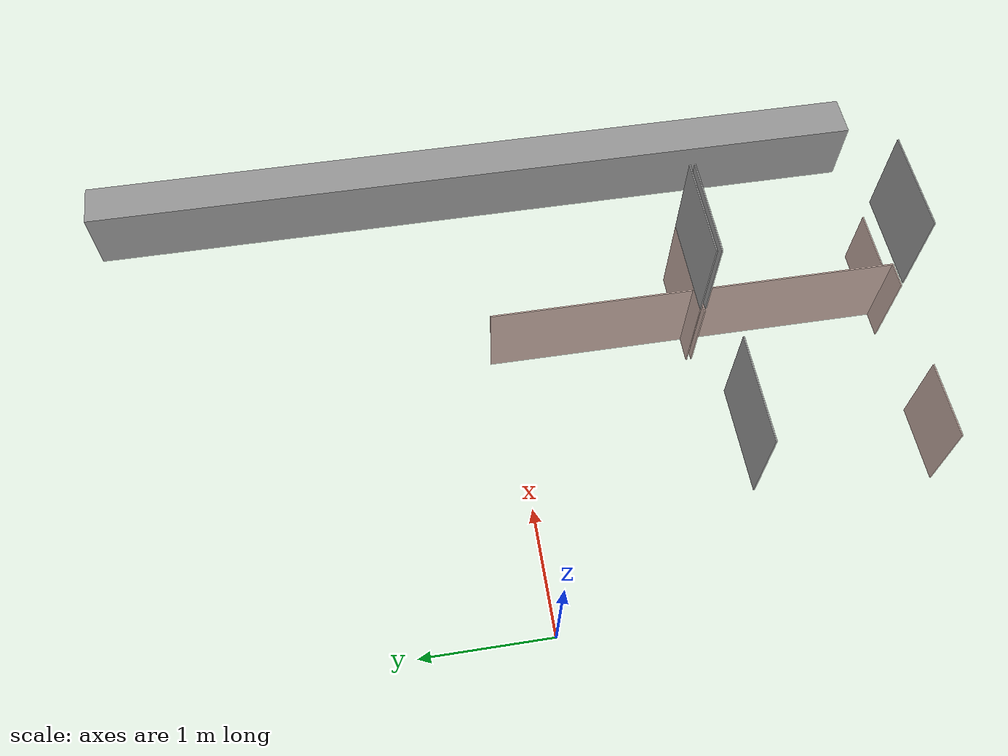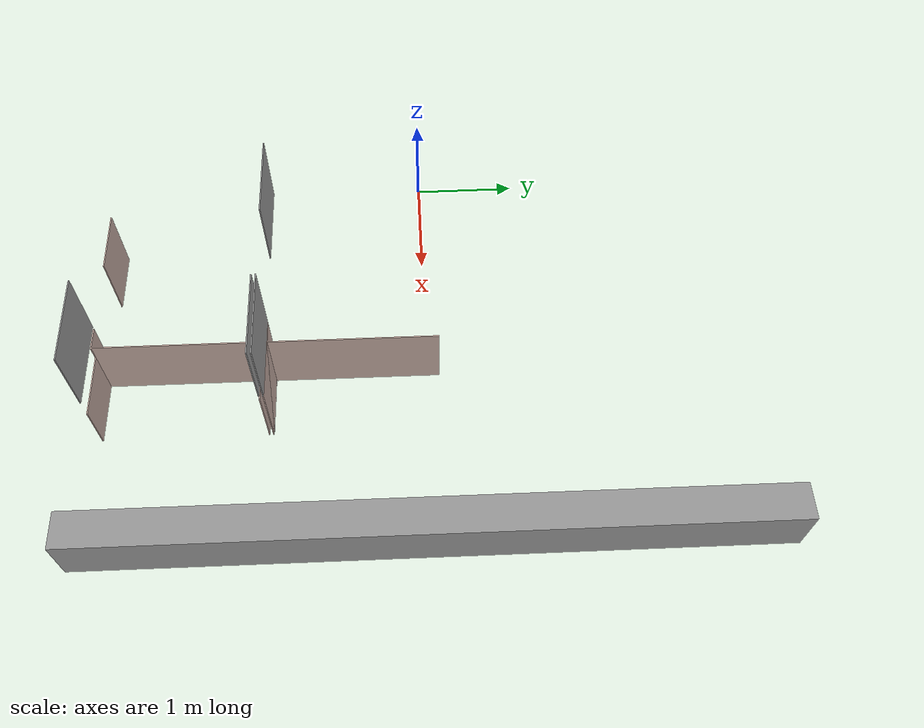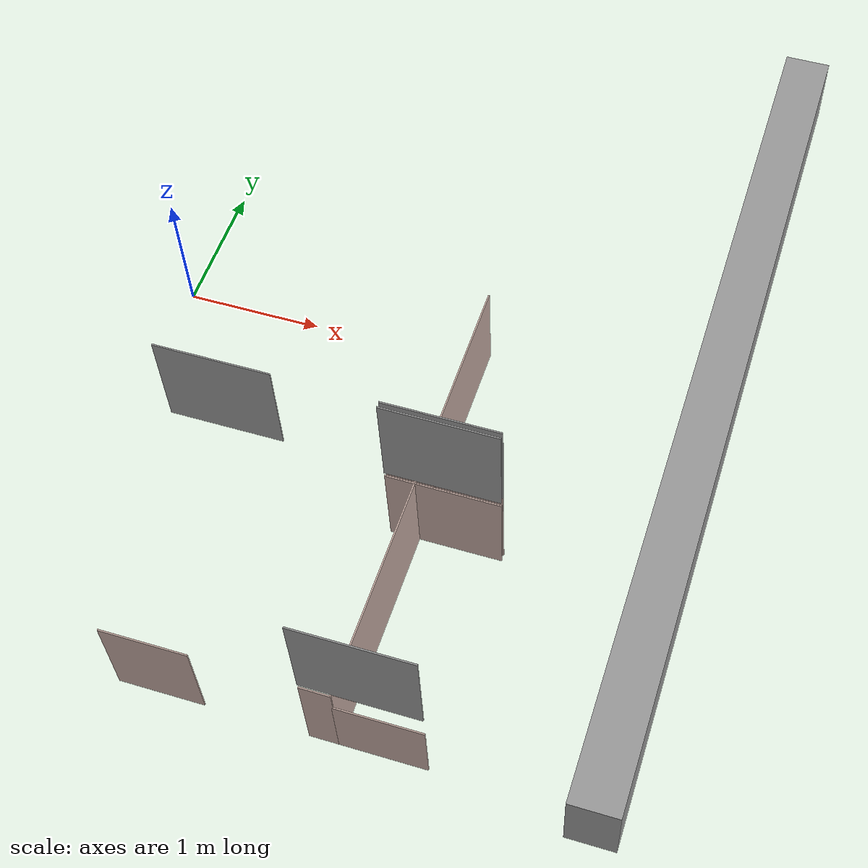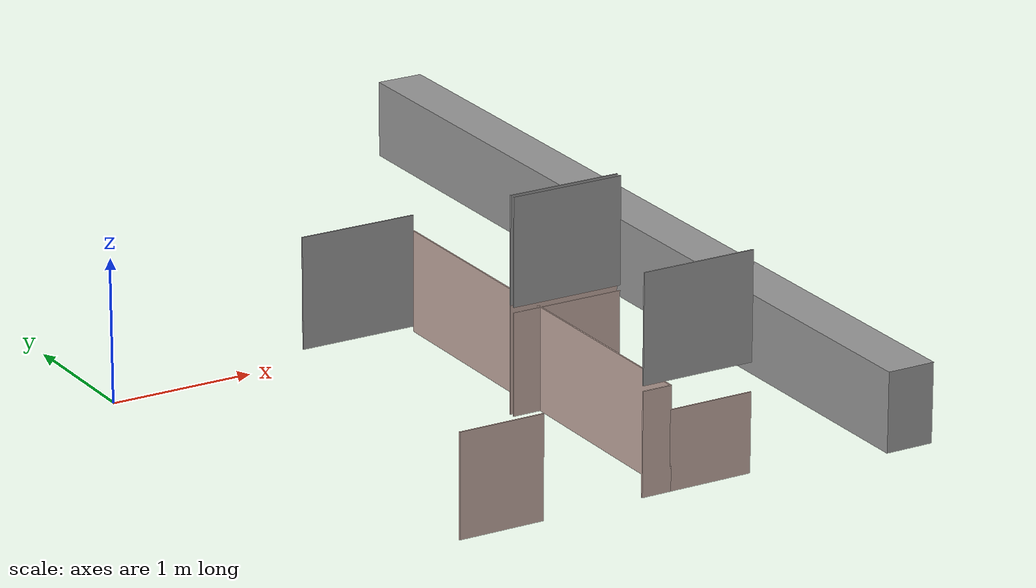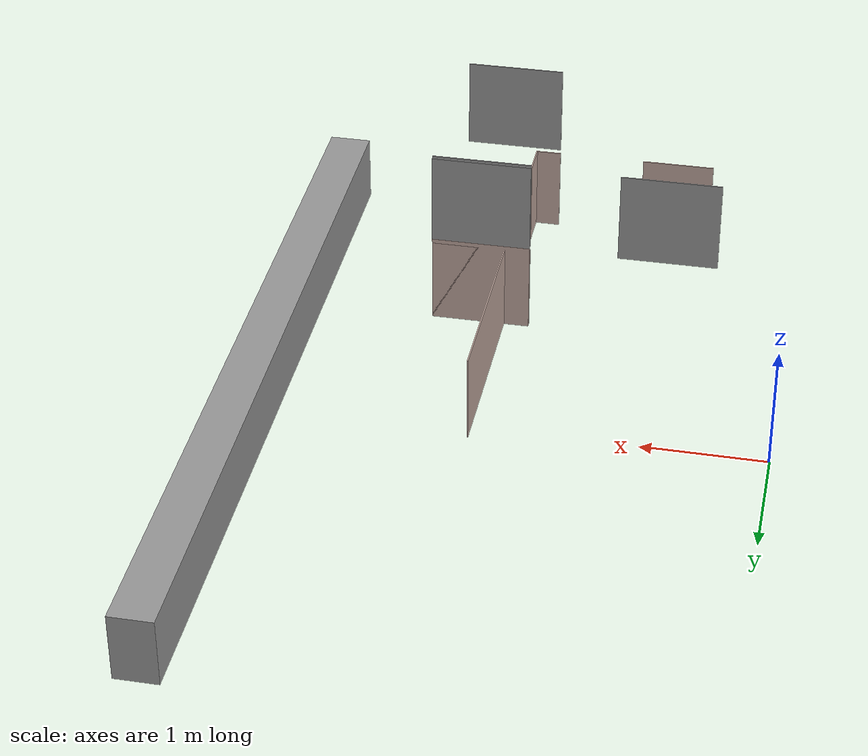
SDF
<sdf version="1.6">
 <model name="change_class3">
  <pose>-0.18406 0.008075 0 0 -0 0</pose>
  <link name="Wall_169">
   <collision name="Wall_169_Collision">
    <geometry><box><size>0.798 0.01 0.751</size></box></geometry>
    <pose>0 0 0.3755 0 -0 0</pose>
   </collision>
   <visual name="Wall_169_Visual">
    <pose>0 0 0.3755 0 -0 0</pose>
    <geometry><box><size>0.798 0.01 0.751</size></box></geometry>
    <material>
     <script><uri>file://media/materials/scripts/gazebo.material</uri><name>Gazebo/Grey</name></script>
     <ambient>1 1 1 1</ambient>
    </material>
   </visual>
   <pose>2.69206 -1.47107 0.751 0 -0 0</pose>
  </link>
  <link name="Wall_170">
   <collision name="Wall_170_Collision">
    <geometry><box><size>0.798 0.01 0.751</size></box></geometry>
    <pose>0 0 0.3755 0 -0 0</pose>
   </collision>
   <visual name="Wall_170_Visual">
    <pose>0 0 0.3755 0 -0 0</pose>
    <geometry><box><size>0.798 0.01 0.751</size></box></geometry>
    <material>
     <script><uri>file://media/materials/scripts/gazebo.material</uri><name>Gazebo/Grey</name></script>
     <ambient>1 1 1 1</ambient>
    </material>
   </visual>
   <pose>2.69206 -1.47107 0.751 0 -0 0</pose>
  </link>
  <link name="Wall_171">
   <collision name="Wall_171_Collision">
    <geometry><box><size>0.798 0.01 0.751</size></box></geometry>
    <pose>0 0 0.3755 0 -0 0</pose>
   </collision>
   <visual name="Wall_171_Visual">
    <pose>0 0 0.3755 0 -0 0</pose>
    <geometry><box><size>0.798 0.01 0.751</size></box></geometry>
    <material>
     <script><uri>file://media/materials/scripts/gazebo.material</uri><name>Gazebo/Grey</name></script>
     <ambient>1 1 1 1</ambient>
    </material>
   </visual>
   <pose>2.69206 -1.51107 0.751 0 -0 0</pose>
  </link>
  <link name="Wall_174">
   <collision name="Wall_174_Collision">
    <geometry><box><size>0.798 0.01 0.751</size></box></geometry>
    <pose>0 0 0.3755 0 -0 0</pose>
   </collision>
   <visual name="Wall_174_Visual">
    <pose>0 0 0.3755 0 -0 0</pose>
    <geometry><box><size>0.798 0.01 0.751</size></box></geometry>
    <material>
     <script><uri>file://media/materials/scripts/gazebo.material</uri><name>Gazebo/Grey</name></script>
     <ambient>1 1 1 1</ambient>
    </material>
   </visual>
   <pose>1.17906 -1.47107 0.751 0 -0 0</pose>
  </link>
  <link name="Wall_184">
   <collision name="Wall_184_Collision">
    <geometry><box><size>0.798 0.01 0.751</size></box></geometry>
    <pose>0 0 0.3755 0 -0 0</pose>
   </collision>
   <visual name="Wall_184_Visual">
    <pose>0 0 0.3755 0 -0 0</pose>
    <geometry><box><size>0.798 0.01 0.751</size></box></geometry>
    <material>
     <script><uri>file://media/materials/scripts/gazebo.material</uri><name>Gazebo/Grey</name></script>
     <ambient>1 1 1 1</ambient>
    </material>
   </visual>
   <pose>2.69206 -3.07508 0.751 0 -0 0</pose>
  </link>
  <link name="Wall_211">
   <collision name="Wall_211_Collision">
    <geometry><box><size>3.194 0.01 0.715</size></box></geometry>
    <pose>0 0 0.3575 0 -0 0</pose>
   </collision>
   <visual name="Wall_211_Visual">
    <pose>0 0 0.3575 0 -0 0</pose>
    <geometry><box><size>3.194 0.01 0.715</size></box></geometry>
    <material>
     <script><uri>file://media/materials/scripts/gazebo.material</uri><name>Gazebo/Grey</name></script>
     <ambient>0.760784 0.662745 0.627451 1</ambient>
    </material>
   </visual>
   <pose>2.49806 -1.48307 0 0 0 -1.5708</pose>
  </link>
  <link name="Wall_297">
   <collision name="Wall_297_Collision">
    <geometry><box><size>0.21 0.01 0.715</size></box></geometry>
    <pose>0 0 0.3575 0 -0 0</pose>
   </collision>
   <visual name="Wall_297_Visual">
    <pose>0 0 0.3575 0 -0 0</pose>
    <geometry><box><size>0.21 0.01 0.715</size></box></geometry>
    <material>
     <script><uri>file://media/materials/scripts/gazebo.material</uri><name>Gazebo/Grey</name></script>
     <ambient>0.760784 0.662745 0.627451 1</ambient>
    </material>
   </visual>
   <pose>2.39806 -3.07508 0 0 -0 0</pose>
  </link>
  <link name="Wall_299">
   <collision name="Wall_299_Collision">
    <geometry><box><size>6.495 0.34 0.555</size></box></geometry>
    <pose>0 0 0.2775 0 -0 0</pose>
   </collision>
   <visual name="Wall_299_Visual">
    <pose>0 0 0.2775 0 -0 0</pose>
    <geometry><box><size>6.495 0.34 0.555</size></box></geometry>
    <material>
     <script><uri>file://media/materials/scripts/gazebo.material</uri><name>Gazebo/Grey</name></script>
     <ambient>0.713726 0.713726 0.713726 1</ambient>
    </material>
   </visual>
   <pose>4.18586 0 0 0 0 -1.5708</pose>
  </link>
  <link name="Wall_38">
   <collision name="Wall_38_Collision">
    <geometry><box><size>0.798 0.01 0.751</size></box></geometry>
    <pose>0 0 0.3755 0 -0 0</pose>
   </collision>
   <visual name="Wall_38_Visual">
    <pose>0 0 0.3755 0 -0 0</pose>
    <geometry><box><size>0.798 0.01 0.751</size></box></geometry>
    <material>
     <script><uri>file://media/materials/scripts/gazebo.material</uri><name>Gazebo/Grey</name></script>
     <ambient>0.760784 0.662745 0.627451 1</ambient>
    </material>
   </visual>
   <pose>2.69206 -1.47107 0 0 -0 0</pose>
  </link>
  <link name="Wall_40">
   <collision name="Wall_40_Collision">
    <geometry><box><size>0.798 0.01 0.715</size></box></geometry>
    <pose>0 0 0.3575 0 -0 0</pose>
   </collision>
   <visual name="Wall_40_Visual">
    <pose>0 0 0.3575 0 -0 0</pose>
    <geometry><box><size>0.798 0.01 0.715</size></box></geometry>
    <material>
     <script><uri>file://media/materials/scripts/gazebo.material</uri><name>Gazebo/Grey</name></script>
     <ambient>0.760784 0.662745 0.627451 1</ambient>
    </material>
   </visual>
   <pose>2.69206 -1.47107 0 0 -0 0</pose>
  </link>
  <link name="Wall_42">
   <collision name="Wall_42_Collision">
    <geometry><box><size>0.798 0.01 0.715</size></box></geometry>
    <pose>0 0 0.3575 0 -0 0</pose>
   </collision>
   <visual name="Wall_42_Visual">
    <pose>0 0 0.3575 0 -0 0</pose>
    <geometry><box><size>0.798 0.01 0.715</size></box></geometry>
    <material>
     <script><uri>file://media/materials/scripts/gazebo.material</uri><name>Gazebo/Grey</name></script>
     <ambient>0.760784 0.662745 0.627451 1</ambient>
    </material>
   </visual>
   <pose>2.69206 -1.51107 0 0 -0 0</pose>
  </link>
  <link name="Wall_72">
   <collision name="Wall_72_Collision">
    <geometry><box><size>0.598 0.01 0.715</size></box></geometry>
    <pose>0 0 0.3575 0 -0 0</pose>
   </collision>
   <visual name="Wall_72_Visual">
    <pose>0 0 0.3575 0 -0 0</pose>
    <geometry><box><size>0.598 0.01 0.715</size></box></geometry>
    <material>
     <script><uri>file://media/materials/scripts/gazebo.material</uri><name>Gazebo/Grey</name></script>
     <ambient>0.760784 0.662745 0.627451 1</ambient>
    </material>
   </visual>
   <pose>1.27806 -3.07508 0 0 -0 0</pose>
  </link>
  <link name="Wall_74">
   <collision name="Wall_74_Collision">
    <geometry><box><size>0.598 0.01 0.551</size></box></geometry>
    <pose>0 0 0.2755 0 -0 0</pose>
   </collision>
   <visual name="Wall_74_Visual">
    <pose>0 0 0.2755 0 -0 0</pose>
    <geometry><box><size>0.598 0.01 0.551</size></box></geometry>
    <material>
     <script><uri>file://media/materials/scripts/gazebo.material</uri><name>Gazebo/Grey</name></script>
     <ambient>0.760784 0.662745 0.627451 1</ambient>
    </material>
   </visual>
   <pose>2.79206 -3.07508 0 0 -0 0</pose>
  </link>
  <static>1</static>
 </model>
</sdf>
